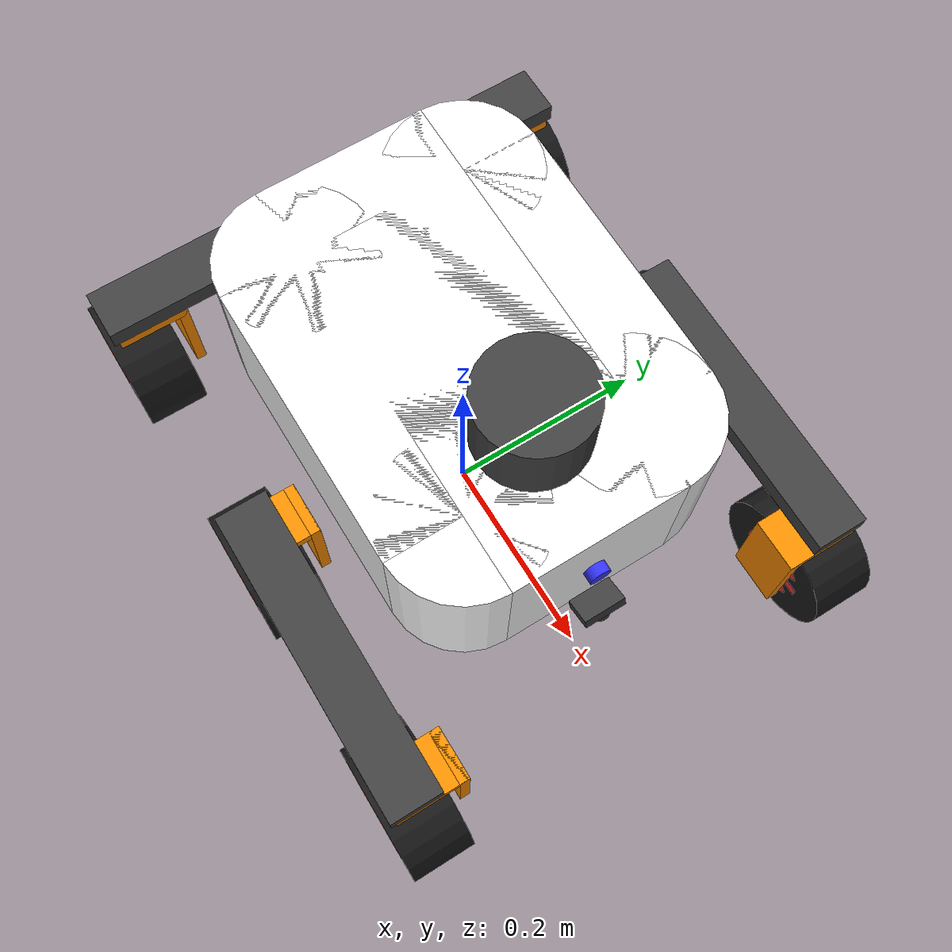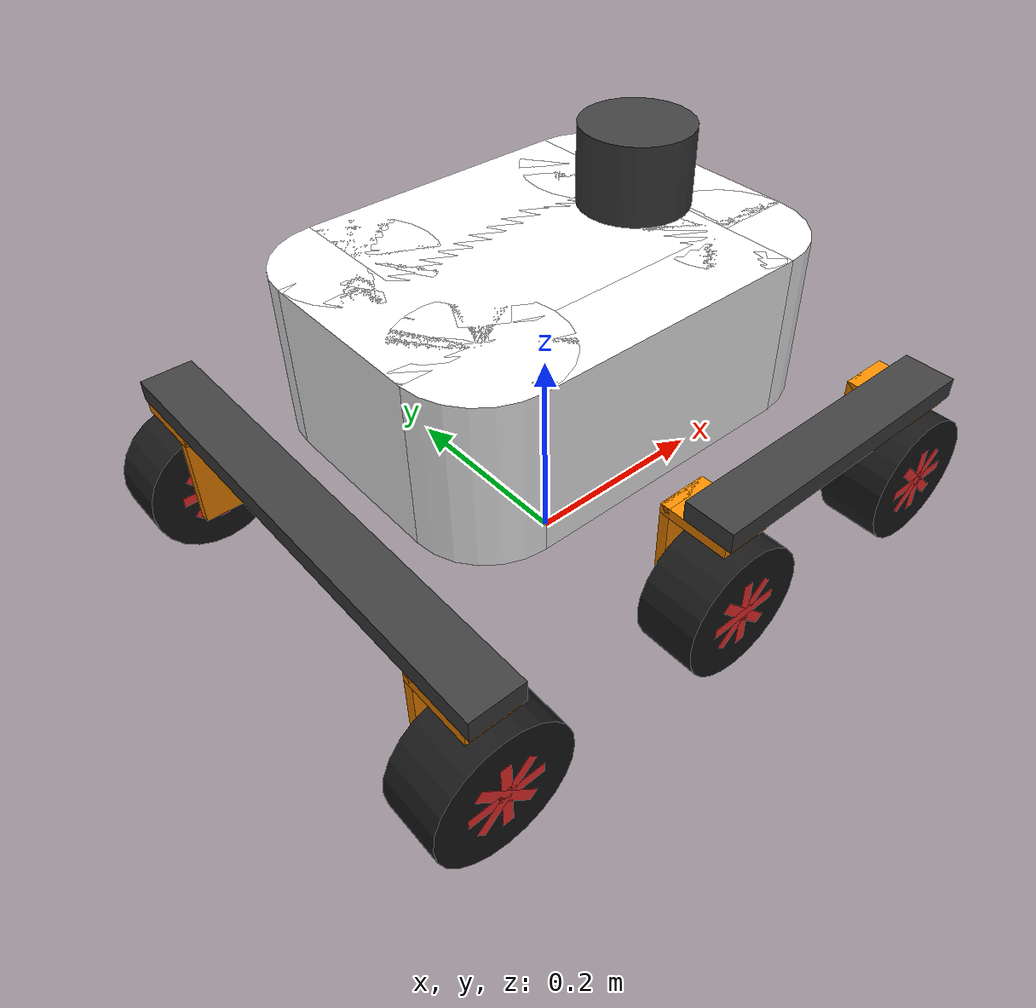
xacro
<?xml version="1.0"?>
<robot xmlns:xacro="http://www.ros.org/wiki/xacro"  name="rover_bot">

    <material name="white">
        <color rgba="1 1 1 1" />
    </material>

    <material name="grey">
        <color rgba="0.25 0.25 0.25 1"/>
    </material>

    <material name="orange">
        <color rgba="1 0.55 0 1"/>
    </material>

    <material name="blue">
        <color rgba="0.2 0.2 1 1"/>
    </material>

    <material name="red">
        <color rgba="1 0.2 0.2 1"/>
    </material>

    <material name="black">
        <color rgba="0.1 0.1 0.1 1"/>
    </material>

    <material name="silver">
        <color rgba="0.6 0.6 0.6 1"/>
    </material>

    <xacro:property name="chassis_height" value="0.15"/>
    <xacro:property name="chassis_length" value="0.4"/>
    <xacro:property name="chassis_width" value="0.3"/>
    <xacro:property name="rocker_clearance" value="0.065"/>
    <xacro:property name="boggie_clearance" value="0.0.065"/>

    <xacro:property name="rocker_length" value="0.3"/>
    <xacro:property name="boggie_length" value="${(2*rocker_clearance)+chassis_width+0.05}"/>

    <xacro:macro name="gazebo_wheel_settings" params="name">
        <gazebo reference="${name}">
            <mu1>1.0</mu1>
            <mu2>1.0</mu2>
            <material>Gazebo/FlatBlack</material>
        </gazebo>
    </xacro:macro>

    <xacro:macro name="gazebo_hinge_color" params="name">
        <gazebo reference="${name}">
            <material>Gazebo/Orange</material>
        </gazebo>
    </xacro:macro>

    <xacro:arg name="laser_visual" default="false"/>
    <xacro:arg name="imu_visual"   default="true"/>
    <xacro:arg name="sonar_visual"   default="false"/>
    <xacro:arg name="cam_visual"   default="false"/>

    <xacro:include filename="$(find rover_bot_description)/description/inertia_macros.xacro"/>
    <xacro:include filename="$(find rover_bot_description)/description/part_macros.xacro"/>

    <link name="base_link">
    </link>

    <joint name="chassis_joint" type="fixed">
        <parent link="base_link"/>
        <child link="chassis_link"/>
        <origin xyz="0 0 0.17"/>
    </joint>

    <link name="chassis_link">
        <xacro:box_with_fillet size_x="${chassis_length}" size_y="${chassis_width}" size_z="${chassis_height}" fr="0.07" material="white" x="0" y="0" z="${chassis_height/2}"/>

        <collision>
            <origin xyz="0 0 ${chassis_height/2}" rpy="0 0 0"/>
            <geometry>
                <box size="${chassis_length} ${chassis_width} ${chassis_height}"/>
            </geometry>
        </collision>

        <xacro:inertial_box mass="2" x="${chassis_length}" y="${chassis_width}" z="${chassis_height}">
            <origin xyz="0 0 ${chassis_height/2}" rpy="0 0 0"/>
        </xacro:inertial_box>
    </link>

    <gazebo reference="chassis_link">
        <material>Gazebo/White</material>
    </gazebo>

    <joint name="left_rocker_joint" type="continuous">
        <parent link="chassis_link"/>
        <child link="left_rocker_link"/>
        <origin xyz="${(rocker_length/2)-0.025} ${(chassis_width/2)+rocker_clearance} 0" rpy="0 0 0"/>
        <axis xyz="0 1 0"/>
    </joint>

    <link name="left_rocker_link">
        <xacro:insert_rocker_link/>
    </link>

    <gazebo reference="left_rocker_link">
        <material>Gazebo/DarkGrey</material>
    </gazebo>

    <joint name="left_rocker_front_servo_hinge_joint" type="revolute">
        <parent link="left_rocker_link"/>
        <child link="left_rocker_front_servo_hinge_link"/>
        <origin xyz="${(rocker_length/2)-0.025} 0 -0.01" rpy="0 0 0"/>
        <axis xyz="0 0 1"/>
        <limit effort="1000.0" lower="${-pi/2}" upper="${pi/2}" velocity="0.5"/>
    </joint>

    <link name="left_rocker_front_servo_hinge_link">
        <xacro:insert_servo_hinge/>
    </link>

    <xacro:gazebo_hinge_color name="left_rocker_front_servo_hinge_link"/>

    <joint name="left_rocker_front_wheel_joint" type="continuous">
        <parent link="left_rocker_front_servo_hinge_link"/>
        <child link="left_rocker_front_wheel_link"/>
        <origin xyz="0 0 -0.085" rpy="${-pi/2} 0 0"/>
        <axis xyz="0 0 1"/>
    </joint>

    <link name="left_rocker_front_wheel_link">
        <xacro:insert_drive_wheel/>
    </link>

    <xacro:gazebo_wheel_settings name="left_rocker_front_wheel_link"/>

    <joint name="left_rocker_front_wheel_rim_joint" type="fixed">
        <parent link="left_rocker_front_wheel_link"/>
        <child link="left_rocker_front_wheel_rim_link"/>
        <origin xyz="0 0 0" rpy="0 0 0"/>
    </joint>

    <link name="left_rocker_front_wheel_rim_link">
        <xacro:insert_wheel_rim/>
    </link>

    <gazebo reference="left_rocker_front_wheel_rim_link">
        <material>Gazebo/Red</material>
    </gazebo>

    <joint name="left_rocker_rear_servo_hinge_joint" type="fixed">
        <parent link="left_rocker_link"/>
        <child link="left_rocker_rear_servo_hinge_link"/>
        <origin xyz="${-1*((rocker_length/2)-0.025)} 0 -0.01" rpy="0 0 0"/>
    </joint>

    <link name="left_rocker_rear_servo_hinge_link">
        <xacro:insert_servo_hinge/>
    </link>

    <xacro:gazebo_hinge_color name="left_rocker_rear_servo_hinge_link"/>

    <joint name="left_rocker_rear_wheel_joint" type="continuous">
        <parent link="left_rocker_rear_servo_hinge_link"/>
        <child link="left_rocker_rear_wheel_link"/>
        <origin xyz="0 0 -0.085" rpy="${-pi/2} 0 0"/>
        <axis xyz="0 0 1"/>
    </joint>

    <link name="left_rocker_rear_wheel_link">
        <xacro:insert_drive_wheel/>
    </link>

    <xacro:gazebo_wheel_settings name="left_rocker_rear_wheel_link"/>

    <joint name="left_rocker_rear_wheel_rim_joint" type="fixed">
        <parent link="left_rocker_rear_wheel_link"/>
        <child link="left_rocker_rear_wheel_rim_link"/>
        <origin xyz="0 0 0" rpy="0 0 0"/>
    </joint>

    <link name="left_rocker_rear_wheel_rim_link">
        <xacro:insert_wheel_rim/>
    </link>

    <gazebo reference="left_rocker_rear_wheel_rim_link">
        <material>Gazebo/Red</material>
    </gazebo>

    <joint name="right_rocker_joint" type="continuous">
        <parent link="chassis_link"/>
        <child link="right_rocker_link"/>
        <origin xyz="${(rocker_length/2)-0.02} ${-1*((chassis_width/2)+rocker_clearance)} 0" rpy="0 0 0"/>
        <axis xyz="0 1 0"/>
    </joint>

    <link name="right_rocker_link">
        <xacro:insert_rocker_link/>
    </link>

    <gazebo reference="right_rocker_link">
        <material>Gazebo/DarkGrey</material>
    </gazebo>

    <joint name="right_rocker_front_servo_hinge_joint" type="revolute">
        <parent link="right_rocker_link"/>
        <child link="right_rocker_front_servo_hinge_link"/>
        <origin xyz="${(rocker_length/2)-0.025} 0 -0.01" rpy="0 0 ${pi}"/>
        <axis xyz="0 0 1"/>
        <limit effort="1000.0" lower="${-pi/2}" upper="${pi/2}" velocity="0.5"/>
    </joint>

    <link name="right_rocker_front_servo_hinge_link">
        <xacro:insert_servo_hinge/>
    </link>

    <xacro:gazebo_hinge_color name="right_rocker_front_servo_hinge_link"/>

    <joint name="right_rocker_front_wheel_joint" type="continuous">
        <parent link="right_rocker_front_servo_hinge_link"/>
        <child link="right_rocker_front_wheel_link"/>
        <origin xyz="0 0 -0.085" rpy="${pi/2} 0 0"/>
        <axis xyz="0 0 1"/>
    </joint>

    <link name="right_rocker_front_wheel_link">
        <xacro:insert_drive_wheel/>
    </link>

    <xacro:gazebo_wheel_settings name="right_rocker_front_wheel_link"/>

    <joint name="right_rocker_front_wheel_rim_joint" type="fixed">
        <parent link="right_rocker_front_wheel_link"/>
        <child link="right_rocker_front_wheel_rim_link"/>
        <origin xyz="0 0 0" rpy="0 0 0"/>
    </joint>

    <link name="right_rocker_front_wheel_rim_link">
        <xacro:insert_wheel_rim/>
    </link>

    <gazebo reference="right_rocker_front_wheel_rim_link">
        <material>Gazebo/Red</material>
    </gazebo>

    <joint name="right_rocker_rear_servo_hinge_joint" type="fixed">
        <parent link="right_rocker_link"/>
        <child link="right_rocker_rear_servo_hinge_link"/>
        <origin xyz="${-1*((rocker_length/2)-0.025)} 0 -0.01" rpy="0 0 ${pi}"/>
    </joint>

    <link name="right_rocker_rear_servo_hinge_link">
        <xacro:insert_servo_hinge/>
    </link>

    <xacro:gazebo_hinge_color name="right_rocker_rear_servo_hinge_link"/>

    <joint name="right_rocker_rear_wheel_joint" type="continuous">
        <parent link="right_rocker_rear_servo_hinge_link"/>
        <child link="right_rocker_rear_wheel_link"/>
        <origin xyz="0 0 -0.085" rpy="${pi/2} 0 0"/>
        <axis xyz="0 0 1"/>
    </joint>

    <link name="right_rocker_rear_wheel_link">
        <xacro:insert_drive_wheel/>
    </link>

    <xacro:gazebo_wheel_settings name="right_rocker_rear_wheel_link"/>

    <joint name="right_rocker_rear_wheel_rim_joint" type="fixed">
        <parent link="right_rocker_rear_wheel_link"/>
        <child link="right_rocker_rear_wheel_rim_link"/>
        <origin xyz="0 0 0" rpy="0 0 0"/>
    </joint>

    <link name="right_rocker_rear_wheel_rim_link">
        <xacro:insert_wheel_rim/>
    </link>

    <gazebo reference="right_rocker_rear_wheel_rim_link">
        <material>Gazebo/Red</material>
    </gazebo>

    <joint name="boggie_joint" type="continuous">
        <parent link="chassis_link"/>
        <child link="boggie_link"/>
        <origin xyz="${-1*(rocker_length-0.05)} 0 0" rpy="0 0 0"/>
        <axis xyz="1 0 0"/>
    </joint>

    <link name="boggie_link">
        <xacro:insert_boggie_link/>
    </link>

    <gazebo reference="boggie_link">
        <material>Gazebo/DarkGrey</material>
    </gazebo>

    <joint name="left_boggie_servo_hinge_joint" type="revolute">
        <parent link="boggie_link"/>
        <child link="left_boggie_servo_hinge_link"/>
        <origin xyz="0 ${(boggie_length/2)-0.025} -0.01" rpy="0 0 0"/>
        <axis xyz="0 0 1"/>
        <limit effort="1000.0" lower="${-pi/2}" upper="${pi/2}" velocity="0.5"/>
    </joint>

    <link name="left_boggie_servo_hinge_link">
        <xacro:insert_servo_hinge/>
    </link>

    <xacro:gazebo_hinge_color name="left_boggie_servo_hinge_link"/>

    <joint name="left_boggie_wheel_joint" type="continuous">
        <parent link="left_boggie_servo_hinge_link"/>
        <child link="left_boggie_wheel_link"/>
        <origin xyz="0 0 -0.085" rpy="${-pi/2} 0 0"/>
        <axis xyz="0 0 1"/>
    </joint>

    <link name="left_boggie_wheel_link">
        <xacro:insert_drive_wheel/>
    </link>

    <xacro:gazebo_wheel_settings name="left_boggie_wheel_link"/>

    <joint name="left_boggie_wheel_rim_joint" type="fixed">
        <parent link="left_boggie_wheel_link"/>
        <child link="left_boggie_wheel_rim_link"/>
        <origin xyz="0 0 0" rpy="0 0 0"/>
    </joint>

    <link name="left_boggie_wheel_rim_link">
        <xacro:insert_wheel_rim/>
    </link>

    <gazebo reference="left_boggie_wheel_rim_link">
        <material>Gazebo/Red</material>
    </gazebo>

    <joint name="right_boggie_servo_hinge_joint" type="revolute">
        <parent link="boggie_link"/>
        <child link="right_boggie_servo_hinge_link"/>
        <origin xyz="0 ${-1*((boggie_length/2)-0.025)} -0.01" rpy="0 0 ${pi}"/>
        <axis xyz="0 0 1"/>
        <limit effort="1000.0" lower="${-pi/2}" upper="${pi/2}" velocity="0.5"/>
    </joint>

    <link name="right_boggie_servo_hinge_link">
        <xacro:insert_servo_hinge/>
    </link>

    <xacro:gazebo_hinge_color name="right_boggie_servo_hinge_link"/>

    <joint name="right_boggie_wheel_joint" type="continuous">
        <parent link="right_boggie_servo_hinge_link"/>
        <child link="right_boggie_wheel_link"/>
        <origin xyz="0 0 -0.085" rpy="${pi/2} 0 0"/>
        <axis xyz="0 0 1"/>
    </joint>

    <link name="right_boggie_wheel_link">
        <xacro:insert_drive_wheel/>
    </link>

    <xacro:gazebo_wheel_settings name="right_boggie_wheel_link"/>

    <joint name="right_boggie_wheel_rim_joint" type="fixed">
        <parent link="right_boggie_wheel_link"/>
        <child link="right_boggie_wheel_rim_link"/>
        <origin xyz="0 0 0" rpy="0 0 0"/>
    </joint>

    <link name="right_boggie_wheel_rim_link">
        <xacro:insert_wheel_rim/>
    </link>

    <gazebo reference="right_boggie_wheel_rim_link">
        <material>Gazebo/Red</material>
    </gazebo>

    <xacro:include filename="$(find rover_bot_description)/description/controllers.xacro"/>

    <xacro:include filename="$(find rover_bot_description)/description/sensors/imu.xacro"/>
    <xacro:include filename="$(find rover_bot_description)/description/sensors/lidar.xacro"/>
    <xacro:include filename="$(find rover_bot_description)/description/sensors/cam.xacro"/>
    <xacro:include filename="$(find rover_bot_description)/description/sensors/sonar.xacro"/>

</robot>

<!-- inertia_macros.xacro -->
<robot xmlns:xacro="http://www.ros.org/wiki/xacro">

    <xacro:macro name="inertial_sphere" params="mass radius *origin">
        <inertial>
            <xacro:insert_block name="origin"/>
            <mass value="${mass}" />
            <inertia ixx="${(2/5) * mass * (radius*radius)}" ixy="0.0" ixz="0.0"
                    iyy="${(2/5) * mass * (radius*radius)}" iyz="0.0"
                    izz="${(2/5) * mass * (radius*radius)}" />
        </inertial>
    </xacro:macro>

    <xacro:macro name="inertial_box" params="mass x y z *origin">
        <inertial>
            <xacro:insert_block name="origin"/>
            <mass value="${mass}" />
            <inertia ixx="${(1/12) * mass * (y*y+z*z)}" ixy="0.0" ixz="0.0"
                    iyy="${(1/12) * mass * (x*x+z*z)}" iyz="0.0"
                    izz="${(1/12) * mass * (x*x+y*y)}" />
        </inertial>
    </xacro:macro>

    <xacro:macro name="inertial_cylinder" params="mass length radius *origin">
        <inertial>
            <xacro:insert_block name="origin"/>
            <mass value="${mass}" />
            <inertia ixx="${(1/12) * mass * (3*radius*radius + length*length)}" ixy="0.0" ixz="0.0"
                    iyy="${(1/12) * mass * (3*radius*radius + length*length)}" iyz="0.0"
                    izz="${(1/2) * mass * (radius*radius)}" />
        </inertial>
    </xacro:macro>

</robot>

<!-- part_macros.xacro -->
<robot xmlns:xacro="http://www.ros.org/wiki/xacro" >

    <xacro:macro name="box_with_fillet" params="size_x size_y size_z fr material x y z">
            <visual>
                <origin xyz="${x} ${y} ${z}" rpy="0 0 0"/>
                <geometry>
                    <box size="${size_x} ${size_y-(2*fr)} ${size_z}"/>
                </geometry>
                <material name="${material}"/>
            </visual>

            <visual>
                <origin xyz="${x} ${y} ${z}" rpy="0 0 0"/>
                <geometry>
                    <box size="${size_x-(2*fr)} ${size_y} ${size_z}"/>
                </geometry>
                <material name="${material}"/>
            </visual>

            <visual>
                <origin xyz="${x+((size_x/2)-fr)} ${y+((size_y/2)-fr)} ${z}" rpy="0 0 0"/>
                <geometry>
                    <cylinder length="${size_z}" radius="${fr}"/>
                </geometry>
                <material name="${material}"/>
            </visual>

            <visual>
                <origin xyz="${x+((size_x/2)-fr)} ${y-((size_y/2)-fr)} ${z}" rpy="0 0 0"/>
                <geometry>
                    <cylinder length="${size_z}" radius="${fr}"/>
                </geometry>
                <material name="${material}"/>
            </visual>

            <visual>
                <origin xyz="${x-((size_x/2)-fr)} ${y+((size_y/2)-fr)} ${z}" rpy="0 0 0"/>
                <geometry>
                    <cylinder length="${size_z}" radius="${fr}"/>
                </geometry>
                <material name="${material}"/>
            </visual>

            <visual>
                <origin xyz="${x-((size_x/2)-fr)} ${y-((size_y/2)-fr)} ${z}" rpy="0 0 0"/>
                <geometry>
                    <cylinder length="${size_z}" radius="${fr}"/>
                </geometry>
                <material name="${material}"/>
            </visual>
    </xacro:macro>

    <xacro:macro name="insert_drive_wheel">
        <visual>
            <origin xyz="0 0 0" rpy="0 0 0"/>
            <geometry>
                <cylinder radius="0.065" length="0.06"/>
            </geometry>
            <material name="black"/>
        </visual>
        <collision>
           <origin xyz="0 0 0" rpy="0 0 0"/>
            <geometry>
                <cylinder radius="0.065" length="0.06"/>
            </geometry>
        </collision>
        <xacro:inertial_cylinder mass="0.2" length="0.06" radius="0.065">
            <origin xyz="0 0 0" rpy="0 0 0"/>
        </xacro:inertial_cylinder>
    </xacro:macro>

    <xacro:macro name="insert_wheel_rim">
        <visual>
            <origin xyz="0 0 0" rpy="0 0 0"/>
            <geometry>
                <box size="0.01 0.07 0.0605"/>
            </geometry>
            <material name="red"/>
        </visual>
        <visual>
            <origin xyz="0 0 0" rpy="0 0 ${pi/2}"/>
            <geometry>
                <box size="0.01 0.07 0.0605"/>
            </geometry>
            <material name="red"/>
        </visual>
        <visual>
            <origin xyz="0 0 0" rpy="0 0 ${-pi/4}"/>
            <geometry>
                <box size="0.01 0.07 0.0605"/>
            </geometry>
            <material name="red"/>
        </visual>
        <visual>
            <origin xyz="0 0 0" rpy="0 0 ${pi/4}"/>
            <geometry>
                <box size="0.01 0.07 0.0605"/>
            </geometry>
            <material name="red"/>
        </visual>
    </xacro:macro>

    <xacro:macro name="insert_servo_hinge">
        <visual>
            <origin xyz="0 -0.015 -0.005" rpy="0 0 0"/>
            <geometry>
                <box size="0.05 0.07 0.01"/>
            </geometry>
            <material name="orange"/>
        </visual>
        <collision>
           <origin xyz="0 -0.015 -0.005" rpy="0 0 0"/>
            <geometry>
                <box size="0.05 0.07 0.01"/>
            </geometry>
        </collision>

        <visual>
            <origin xyz="0 -0.045 -0.05" rpy="0 0 0"/>
            <geometry>
                <box size="0.05 0.01 0.1"/>
            </geometry>
            <material name="orange"/>
        </visual>
        <collision>
           <origin xyz="0 -0.05 -0.05" rpy="0 0 0"/>
            <geometry>
                <box size="0.05 0.01 0.1"/>
            </geometry>
        </collision>
        <xacro:inertial_cylinder mass="0.1" length="0.11" radius="0.025">
            <origin xyz="0 0 0" rpy="0 0 0"/>
        </xacro:inertial_cylinder>
    </xacro:macro>

       <xacro:macro name="insert_rocker_link">
        <visual>
            <origin xyz="0 0 0" rpy="0 0 0"/>
            <geometry>
                <box size="${rocker_length} 0.05 0.02"/>
            </geometry>
            <material name="grey"/>
        </visual>

        <collision>
            <origin xyz="0 0 0" rpy="0 0 0"/>
            <geometry>
                <box size="${rocker_length} 0.05 0.02"/>
            </geometry>
        </collision>

        <xacro:inertial_box mass="0.2" x="${rocker_length}" y="0.05" z="0.02">
            <origin xyz="0 0 0" rpy="0 0 0"/>
        </xacro:inertial_box>
    </xacro:macro>

    <xacro:macro name="insert_stopper_link">
        <visual>
            <origin xyz="0 0 0" rpy="0 0 0"/>
            <geometry>
                <box size="0.1 0.05 0.02"/>
            </geometry>
            <material name="grey"/>
        </visual>

        <collision>
            <origin xyz="0 0 0" rpy="0 0 0"/>
            <geometry>
                <box size="0.1 0.05 0.02"/>
            </geometry>
        </collision>

        <xacro:inertial_box mass="0.2" x="0.1" y="0.05" z="0.02">
            <origin xyz="0 0 0" rpy="0 0 0"/>
        </xacro:inertial_box>
    </xacro:macro>

    <xacro:macro name="insert_boggie_link">
        <visual>
            <origin xyz="0 0 0" rpy="0 0 0"/>
            <geometry>
                <box size="0.05 ${boggie_length} 0.02"/>
            </geometry>
            <material name="grey"/>
        </visual>

        <collision>
            <origin xyz="0 0 0" rpy="0 0 0"/>
            <geometry>
                <box size="0.05 ${boggie_length} 0.02"/>
            </geometry>
        </collision>

        <xacro:inertial_box mass="0.2" x="0.05" y="${boggie_length}" z="0.2">
            <origin xyz="0 0 0" rpy="0 0 0"/>
        </xacro:inertial_box>
    </xacro:macro>

    <xacro:macro name="insert_servo_transmission" params="joint_name">
        <joint name="${joint_name}">
            <command_interface name="position">
                <param name="min">${-pi/2}</param>
                <param name="max">${pi/2}</param>
            </command_interface>
            <state_interface name="position"/>
        </joint>
    </xacro:macro>

     <xacro:macro name="insert_free_transmission" params="joint_name">
        <joint name="${joint_name}">
            <command_interface name="effort">
                <param name="min">0</param>
                <param name="max">0</param>
            </command_interface>
            <state_interface name="effort"/>
        </joint>
    </xacro:macro>

    <xacro:macro name="insert_wheel_transmission" params="joint_name">
        <joint name="${joint_name}">
            <command_interface name="velocity">
                <param name="min">-10.0</param>
                <param name="max">10.0</param>
            </command_interface>
            <state_interface name="position"/>
            <state_interface name="velocity"/>
        </joint>
    </xacro:macro>

</robot>

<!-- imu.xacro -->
<robot xmlns:xacro="http://www.ros.org/wiki/xacro"  name="rover_bot">

    <joint name="imu_joint" type="fixed">
        <parent link="chassis_link"/>
        <child link="imu_link"/>
        <origin xyz="0 0 ${chassis_height}" rpy="0 0 0"/>
        <axis xyz="0 0 0"/>
    </joint>

    <link name="imu_link"/>

    <gazebo reference="imu_link">
        <sensor name="imu" type="imu">
            <always_on>true</always_on>
            <update_rate>30</update_rate>
            <visualize>$(arg imu_visual)</visualize>
            <imu>
            <angular_velocity>
                <x>
                <noise type="gaussian">
                    <mean>0.0</mean>
                    <stddev>2e-4</stddev>
                </noise>
                </x>
                <y>
                <noise type="gaussian">
                    <mean>0.0</mean>
                    <stddev>2e-4</stddev>
                </noise>
                </y>
                <z>
                <noise type="gaussian">
                    <mean>0.0</mean>
                    <stddev>2e-4</stddev>
                </noise>
                </z>
            </angular_velocity>
            <linear_acceleration>
                <x>
                <noise type="gaussian">
                    <mean>0.0</mean>
                    <stddev>1.7e-2</stddev>
                </noise>
                </x>
                <y>
                <noise type="gaussian">
                    <mean>0.0</mean>
                    <stddev>1.7e-2</stddev>
                </noise>
                </y>
                <z>
                <noise type="gaussian">
                    <mean>0.0</mean>
                    <stddev>1.7e-2</stddev>
                </noise>
                </z>
            </linear_acceleration>
            </imu>
            <plugin name="imu_plugin" filename="libgazebo_ros_imu_sensor.so">
                <ros>
                    <namespace>imu</namespace>
                    <remapping>~/out:=data</remapping>
                </ros>
                <initial_orientation_as_reference>false</initial_orientation_as_reference>
                <frame_name>imu_link</frame_name>
            </plugin>
        </sensor>
    </gazebo>

</robot>

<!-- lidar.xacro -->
<robot xmlns:xacro="http://www.ros.org/wiki/xacro"  name="rover_bot">

    <joint name="lidar_joint" type="fixed">
        <parent link="chassis_link"/>
        <child link="lidar_link"/>
        <origin xyz="0.1 0 ${chassis_height + 0.06}" rpy="0 0 0"/>
        <axis xyz="0 0 0"/>
    </joint>

    <link name="lidar_link">
    <visual>
      <origin xyz="0 0 -0.02" rpy="0 0 0"/>
      <geometry>
        <cylinder radius="0.05" length="0.07" />
      </geometry>
      <material name="grey"/>
    </visual>

    <collision>
      <origin xyz="0 0 -0.02" rpy="0 0 0"/>
      <geometry>
        <cylinder radius="0.05" length="0.07" />
      </geometry>
    </collision>

    <xacro:inertial_cylinder mass="0.2" length="0.07" radius="0.05">
            <origin xyz="0 0 -0.02" rpy="0 0 0"/>
        </xacro:inertial_cylinder>
    </link>

    <gazebo reference="lidar_link">
        <material>Gazebo/DarkGrey</material>
        <sensor name="lidar" type="ray">
            <always_on>true</always_on>
            <visualize>$(arg laser_visual)</visualize>
            <pose>0.0 0 0.0 0 0 0</pose>
            <update_rate>15</update_rate>
            <ray>
                <scan>
                <horizontal>
                    <samples>720</samples>
                    <resolution>1</resolution>
                    <min_angle>${0*pi}</min_angle>
                    <max_angle>${2*pi}</max_angle>
                </horizontal>
                </scan>
                <range>
                    <min>0.1</min>
                    <max>5</max>
                    <resolution>0.01</resolution>
                </range>
                <noise>
                    <type>gaussian</type>
                    <mean>0.0</mean>
                    <stddev>0.01</stddev>
                </noise>
            </ray>
            <plugin name="laser_plugin" filename="libgazebo_ros_ray_sensor.so">
            <ros>
                <namespace>lidar</namespace>
                <remapping>~/out:=scan</remapping>
            </ros>
            <output_type>sensor_msgs/LaserScan</output_type>
            <frame_name>lidar_link</frame_name>
            </plugin>
        </sensor>
    </gazebo>

</robot>

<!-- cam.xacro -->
<robot xmlns:xacro="http://www.ros.org/wiki/xacro"  name="rover_bot">

    <xacro:property name="line_sense_angle"   value="${pi/2.5}"/>

    <xacro:property name="line_sense_mode"   value="true"/>

    <joint name="cam_joint" type="fixed">
        <parent link="chassis_link"/>
        <child link="cam_link"/>
        <xacro:if value="${line_sense_mode}">
            <origin xyz="0.22 0 0" rpy="0 ${line_sense_angle} 0"/>
        </xacro:if>
        <xacro:unless value="${line_sense_mode}">
            <origin xyz="0.22 0 ${chassis_height+0.01}" rpy="0 ${pi/4} 0"/>
        </xacro:unless>
    </joint>

    <link name="cam_link">
        <visual>
            <origin xyz="-0.005 0 0" rpy="0 ${pi/2} 0"/>
            <geometry>
                <cylinder radius="0.01" length="0.01"/>
            </geometry>
            <material name="grey"/>
        </visual>
        <visual>
            <origin xyz="-0.015 0 0" rpy="0 0 0"/>
            <geometry>
                <box size="0.01 0.04 0.025" />
            </geometry>
            <material name="grey"/>
        </visual>
        <collision>
            <origin xyz="-0.01 0 0" rpy="0 0 0"/>
            <geometry>
                <box size="0.02 0.04 0.025"/>
            </geometry>
        </collision>
        <xacro:inertial_box mass="0.0005" x="0.02" y="0.04" z="0.025">
            <origin xyz="-0.01 0 0" rpy="0 0 0"/>
        </xacro:inertial_box>
    </link>

    <joint name="cam_optical_joint" type="fixed">
        <parent link="cam_link"/>
        <child link="cam_optical_link"/>
        <origin xyz="0 0 0" rpy="${-pi/2} 0 ${-pi/2}"/>
    </joint>

    <link name="cam_optical_link"/>

    <gazebo reference="cam_link">
        <material>Gazebo/DarkGrey</material>

        <sensor type="camera" name="camera">
            <visualize>$(arg cam_visual)</visualize>
            <update_rate>15.0</update_rate>
            <camera name="cam">
                <horizontal_fov>1.4</horizontal_fov>
                <image>
                    <width>320</width>
                    <height>240</height>
                    <format>R8G8B8</format>
                </image>
                <clip>
                    <near>0.05</near>
                    <far>5</far>
                </clip>
                <noise>
                    <type>gaussian</type>
                    <mean>0.0</mean>
                    <stddev>0.007</stddev>
                </noise>
            </camera>
            <plugin name="rgb_cam_plugin" filename="libgazebo_ros_camera.so">
                <camera_name>cam</camera_name>
                <frame_name>cam_optical_link</frame_name>
                <hack_baseline>0.2</hack_baseline>
            </plugin>
        </sensor>
    </gazebo>

</robot>

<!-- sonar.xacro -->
<robot xmlns:xacro="http://www.ros.org/wiki/xacro"  name="rover_bot">

    <xacro:property name="deg2rad" value="0.017460317"/>
    <xacro:property name="scan_angle" value="1"/>

    <joint name="sonar_joint" type="fixed">
        <parent link="chassis_link"/>
        <child link="sonar_link"/>
        <origin xyz="0.21 0 ${chassis_height/2}" rpy="0 0 0"/>
        <axis xyz="0 0 0"/>
    </joint>

    <link name="sonar_link">
        <visual>
            <origin xyz="-0.005 0 0" rpy="0 ${pi/2} 0"/>
            <geometry>
                <cylinder radius="0.01" length="0.01" />
            </geometry>
            <material name="blue"/>
        </visual>

        <collision>
            <origin xyz="-0.005 0 0" rpy="0 ${pi/2} 0"/>
            <geometry>
                <cylinder radius="0.01" length="0.01" />
            </geometry>
        </collision>

        <xacro:inertial_cylinder mass="0.0005" length="0.01" radius="0.01">
            <origin xyz="-0.005 0 0" rpy="0 0 0"/>
        </xacro:inertial_cylinder>
    </link>

    <gazebo reference="sonar_link">
        <material>Gazebo/Blue</material>

        <sensor name="sonar" type="ray">
            <always_on>true</always_on>
            <visualize>$(arg sonar_visual)</visualize>
            <pose>0.0 0 0.0 0 0 0</pose>
            <update_rate>20</update_rate>
            <ray>
                <scan>
                    <horizontal>
                    <samples>20</samples>
                    <resolution>1</resolution>
                    <min_angle>${-scan_angle * deg2rad}</min_angle>
                    <max_angle>${scan_angle * deg2rad}</max_angle>
                    </horizontal>
                    <vertical>
                    <samples>20</samples>
                    <resolution>1</resolution>
                    <min_angle>${-scan_angle * deg2rad}</min_angle>
                    <max_angle>${scan_angle * deg2rad}</max_angle>
                    </vertical>
                </scan>
                <range>
                    <min>0.01</min>
                    <max>2</max>
                    <resolution>0.02</resolution>
                </range>
            </ray>

            <plugin name="sonar_plugin" filename="libgazebo_ros_ray_sensor.so">
                <ros>
                    <namespace>sonar</namespace>
                    <remapping>~/out:=range</remapping>
                </ros>
                <output_type>sensor_msgs/Range</output_type>
                <radiation_type>ultrasound</radiation_type>
                <frame_name>sonar_link</frame_name>
            </plugin>
        </sensor>
    </gazebo>

</robot>
